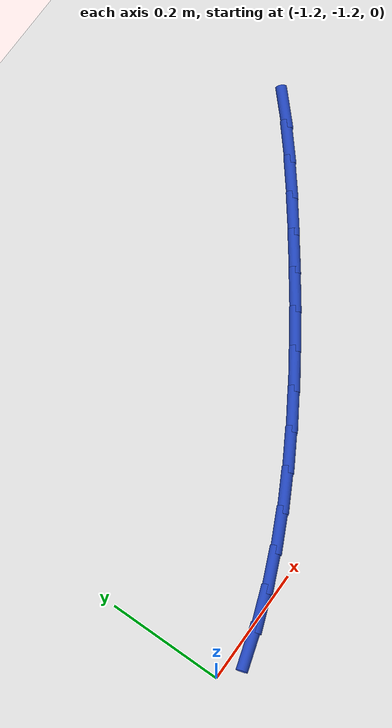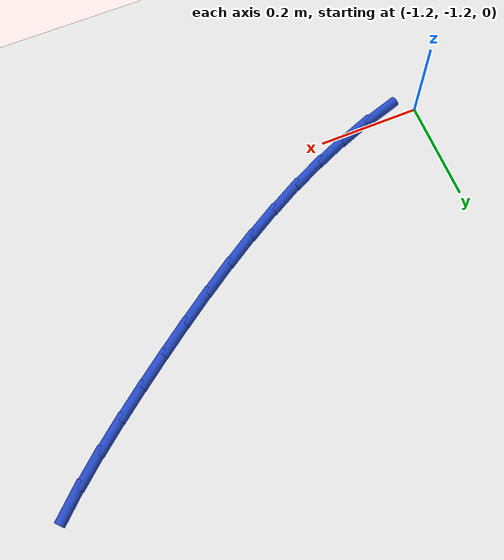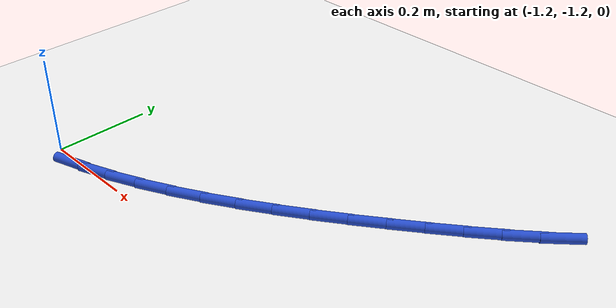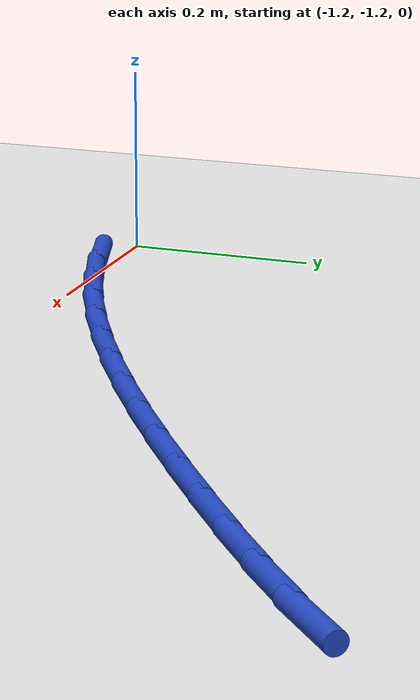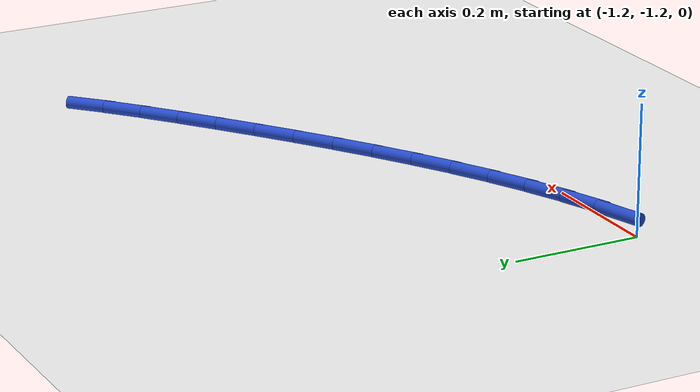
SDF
<sdf version="1.6">
 <world name="default">
  <model name="ground_plane">
   <static>1</static>
   <link name="link">
    <collision name="collision">
     <geometry><plane><normal>0 0 1</normal><size>100 100</size></plane></geometry>
     <surface><friction><ode><mu>100</mu><mu2>50</mu2></ode></friction></surface>
    </collision>
    <visual name="visual">
     <cast_shadows>0</cast_shadows>
     <geometry><plane><normal>0 0 1</normal><size>100 100</size></plane></geometry>
     <material>
      <script><uri>file://media/materials/scripts/gazebo.material</uri><name>Gazebo/WhiteGlow</name></script>
     </material>
    </visual>
   </link>
  </model>
  <model name="line">
   <link name="link_93">
    <pose>-1.1302003387217303 -1.2152685949286857 0.01 0 1.57 0.30098872208862215</pose>
    <collision name="collision">
     <geometry><cylinder><radius>0.01</radius><length>0.08</length></cylinder></geometry>
    </collision>
    <visual name="visual">
     <material>
      <script><name>Gazebo/Blue</name><uri>file://media/materials/scripts/gazebo.material</uri></script>
     </material>
     <geometry><cylinder><radius>0.01</radius><length>0.08</length></cylinder></geometry>
    </visual>
   </link>
   <link name="link_94">
    <pose>-1.0693494772824073 -1.1963792758006302 0.01 0 1.57 0.360321412893181</pose>
    <collision name="collision">
     <geometry><cylinder><radius>0.01</radius><length>0.08</length></cylinder></geometry>
    </collision>
    <visual name="visual">
     <material>
      <script><name>Gazebo/Blue</name><uri>file://media/materials/scripts/gazebo.material</uri></script>
     </material>
     <geometry><cylinder><radius>0.01</radius><length>0.08</length></cylinder></geometry>
    </visual>
   </link>
   <link name="link_95">
    <pose>-1.008552136376589 -1.1734726710036614 0.01 0 1.57 0.4122682234922667</pose>
    <collision name="collision">
     <geometry><cylinder><radius>0.01</radius><length>0.08</length></cylinder></geometry>
    </collision>
    <visual name="visual">
     <material>
      <script><name>Gazebo/Blue</name><uri>file://media/materials/scripts/gazebo.material</uri></script>
     </material>
     <geometry><cylinder><radius>0.01</radius><length>0.08</length></cylinder></geometry>
    </visual>
   </link>
   <link name="link_96">
    <pose>-0.9479410243597544 -1.1469655787763033 0.01 0 1.57 0.4575880515563823</pose>
    <collision name="collision">
     <geometry><cylinder><radius>0.01</radius><length>0.08</length></cylinder></geometry>
    </collision>
    <visual name="visual">
     <material>
      <script><name>Gazebo/Blue</name><uri>file://media/materials/scripts/gazebo.material</uri></script>
     </material>
     <geometry><cylinder><radius>0.01</radius><length>0.08</length></cylinder></geometry>
    </visual>
   </link>
   <link name="link_97">
    <pose>-0.8876488495873834 -1.1172747973570811 0.01 0 1.57 0.4969917458256639</pose>
    <collision name="collision">
     <geometry><cylinder><radius>0.01</radius><length>0.08</length></cylinder></geometry>
    </collision>
    <visual name="visual">
     <material>
      <script><name>Gazebo/Blue</name><uri>file://media/materials/scripts/gazebo.material</uri></script>
     </material>
     <geometry><cylinder><radius>0.01</radius><length>0.08</length></cylinder></geometry>
    </visual>
   </link>
   <link name="link_98">
    <pose>-0.8278083204149548 -1.0848171249845198 0.01 0 1.57 0.5311119043501255</pose>
    <collision name="collision">
     <geometry><cylinder><radius>0.01</radius><length>0.08</length></cylinder></geometry>
    </collision>
    <visual name="visual">
     <material>
      <script><name>Gazebo/Blue</name><uri>file://media/materials/scripts/gazebo.material</uri></script>
     </material>
     <geometry><cylinder><radius>0.01</radius><length>0.08</length></cylinder></geometry>
    </visual>
   </link>
   <link name="link_99">
    <pose>-0.7685521451979469 -1.0500093598971434 0.01 0 1.57 0.5604902295961466</pose>
    <collision name="collision">
     <geometry><cylinder><radius>0.01</radius><length>0.08</length></cylinder></geometry>
    </collision>
    <visual name="visual">
     <material>
      <script><name>Gazebo/Blue</name><uri>file://media/materials/scripts/gazebo.material</uri></script>
     </material>
     <geometry><cylinder><radius>0.01</radius><length>0.08</length></cylinder></geometry>
    </visual>
   </link>
   <link name="link_100">
    <pose>-0.7100130322918383 -1.0132683003334766 0.01 0 1.57 0.5855744912629564</pose>
    <collision name="collision">
     <geometry><cylinder><radius>0.01</radius><length>0.08</length></cylinder></geometry>
    </collision>
    <visual name="visual">
     <material>
      <script><name>Gazebo/Blue</name><uri>file://media/materials/scripts/gazebo.material</uri></script>
     </material>
     <geometry><cylinder><radius>0.01</radius><length>0.08</length></cylinder></geometry>
    </visual>
   </link>
   <link name="link_101">
    <pose>-0.6523236900521092 -0.9750107445320448 0.01 0 1.57 0.6067197823171003</pose>
    <collision name="collision">
     <geometry><cylinder><radius>0.01</radius><length>0.08</length></cylinder></geometry>
    </collision>
    <visual name="visual">
     <material>
      <script><name>Gazebo/Blue</name><uri>file://media/materials/scripts/gazebo.material</uri></script>
     </material>
     <geometry><cylinder><radius>0.01</radius><length>0.08</length></cylinder></geometry>
    </visual>
   </link>
   <link name="link_102">
    <pose>-0.595616826834238 -0.9356534907313725 0.01 0 1.57 0.6241906300651578</pose>
    <collision name="collision">
     <geometry><cylinder><radius>0.01</radius><length>0.08</length></cylinder></geometry>
    </collision>
    <visual name="visual">
     <material>
      <script><name>Gazebo/Blue</name><uri>file://media/materials/scripts/gazebo.material</uri></script>
     </material>
     <geometry><cylinder><radius>0.01</radius><length>0.08</length></cylinder></geometry>
    </visual>
   </link>
   <link name="link_103">
    <pose>-0.5400251509937037 -0.8956133371699846 0.01 0 1.57 0.6381987354439078</pose>
    <collision name="collision">
     <geometry><cylinder><radius>0.01</radius><length>0.08</length></cylinder></geometry>
    </collision>
    <visual name="visual">
     <material>
      <script><name>Gazebo/Blue</name><uri>file://media/materials/scripts/gazebo.material</uri></script>
     </material>
     <geometry><cylinder><radius>0.01</radius><length>0.08</length></cylinder></geometry>
    </visual>
   </link>
   <link name="link_104">
    <pose>-0.48568196718434914 -0.8553044011364175 0.01 0 1.57 0.652724707571203</pose>
    <collision name="collision">
     <geometry><cylinder><radius>0.01</radius><length>0.08</length></cylinder></geometry>
    </collision>
    <visual name="visual">
     <material>
      <script><name>Gazebo/Blue</name><uri>file://media/materials/scripts/gazebo.material</uri></script>
     </material>
     <geometry><cylinder><radius>0.01</radius><length>0.08</length></cylinder></geometry>
    </visual>
   </link>
   <link name="link_105">
    <pose>-0.43278256099833834 -0.8148621343959956 0.01 0 1.57 0.6752448896823836</pose>
    <collision name="collision">
     <geometry><cylinder><radius>0.01</radius><length>0.08</length></cylinder></geometry>
    </collision>
    <visual name="visual">
     <material>
      <script><name>Gazebo/Blue</name><uri>file://media/materials/scripts/gazebo.material</uri></script>
     </material>
     <geometry><cylinder><radius>0.01</radius><length>0.08</length></cylinder></geometry>
    </visual>
   </link>
   <link name="link_106">
    <pose>-0.38163747808470067 -0.7739037809404262 0.01 0 1.57 0.7069279414048191</pose>
    <collision name="collision">
     <geometry><cylinder><radius>0.01</radius><length>0.08</length></cylinder></geometry>
    </collision>
    <visual name="visual">
     <material>
      <script><name>Gazebo/Blue</name><uri>file://media/materials/scripts/gazebo.material</uri></script>
     </material>
     <geometry><cylinder><radius>0.01</radius><length>0.08</length></cylinder></geometry>
    </visual>
   </link>
   <link name="link_107">
    <pose>-0.33256981959133036 -0.7319901353956101 0.01 0 1.57 0.748083126517814</pose>
    <collision name="collision">
     <geometry><cylinder><radius>0.01</radius><length>0.08</length></cylinder></geometry>
    </collision>
    <visual name="visual">
     <material>
      <script><name>Gazebo/Blue</name><uri>file://media/materials/scripts/gazebo.material</uri></script>
     </material>
     <geometry><cylinder><radius>0.01</radius><length>0.08</length></cylinder></geometry>
    </visual>
   </link>
  </model>
 </world>
</sdf>
